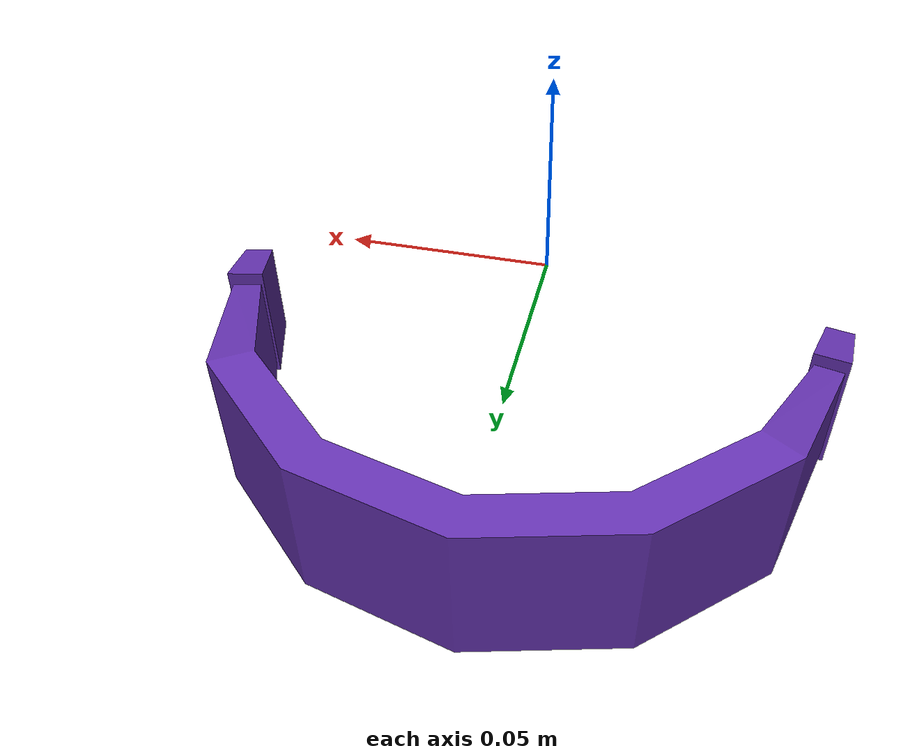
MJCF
<mujoco model="top_watertight_tiny">
  <default>
    <default group="2" type="mesh" contype="0" conaffinity="0">
      <geom group="2" type="mesh" contype="0" conaffinity="0"/>
    </default>
    <default group="3" type="mesh">
      <geom group="3" type="mesh"/>
    </default>
  </default>
  <asset>
    <mesh file="top_watertight_tiny.obj"/>
    <mesh file="top_watertight_tiny_collision_0.obj"/>
    <mesh file="top_watertight_tiny_collision_1.obj"/>
    <mesh file="top_watertight_tiny_collision_2.obj"/>
    <mesh file="top_watertight_tiny_collision_3.obj"/>
    <mesh file="top_watertight_tiny_collision_4.obj"/>
    <mesh file="top_watertight_tiny_collision_5.obj"/>
  </asset>
  <worldbody>
    <body name="top_watertight_tiny">
      <freejoint/>
      <geom mesh="top_watertight_tiny" group="2" type="mesh" rgba="0.4 0.2 0.7 1" contype="0" conaffinity="0"/>
      <geom mesh="top_watertight_tiny_collision_0" rgba="0.9953216689823152 0.5612878978575979 0.4330687415905615 1" group="3" type="mesh"/>
      <geom mesh="top_watertight_tiny_collision_1" rgba="0.16890570363622637 0.4743819673370072 0.7035933103140639 1" group="3" type="mesh"/>
      <geom mesh="top_watertight_tiny_collision_2" rgba="0.050984244013493996 0.34365890097586105 0.2049231459749007 1" group="3" type="mesh"/>
      <geom mesh="top_watertight_tiny_collision_3" rgba="0.5859334586850894 0.43324620159177396 0.7777749571624712 1" group="3" type="mesh"/>
      <geom mesh="top_watertight_tiny_collision_4" rgba="0.05297137474321467 0.5279955368687115 0.4125917636921278 1" group="3" type="mesh"/>
      <geom mesh="top_watertight_tiny_collision_5" rgba="0.28188375648977737 0.9775295154427945 2.1983405617764795e-05 1" group="3" type="mesh"/>
    </body>
  </worldbody>
</mujoco>
